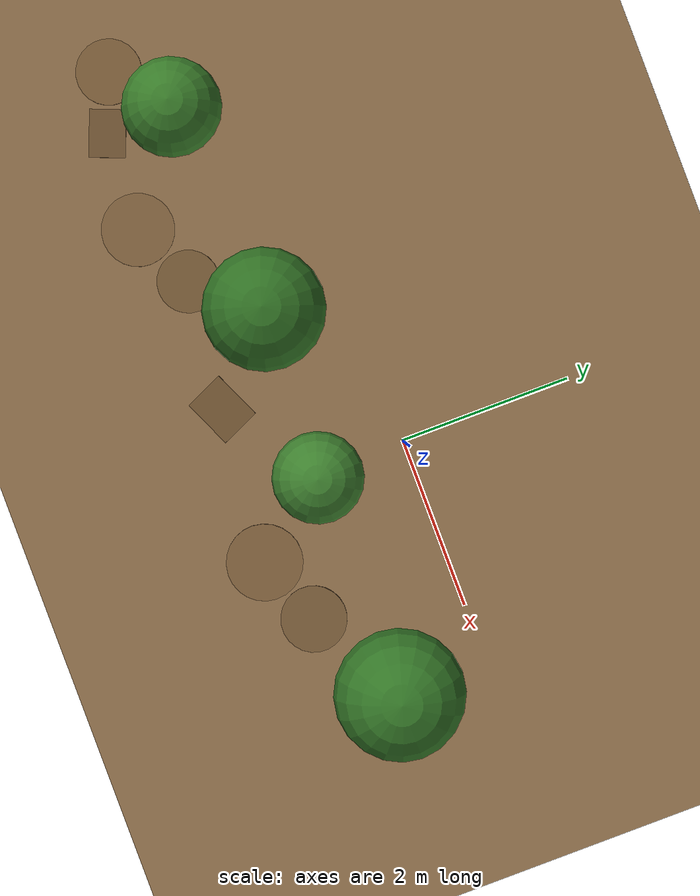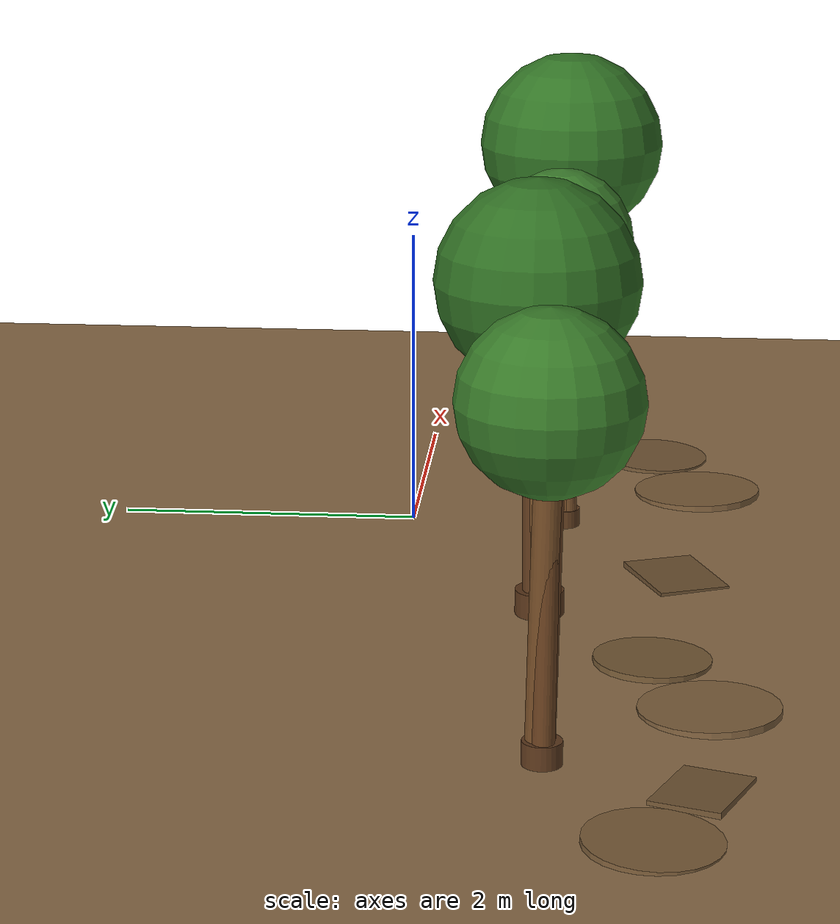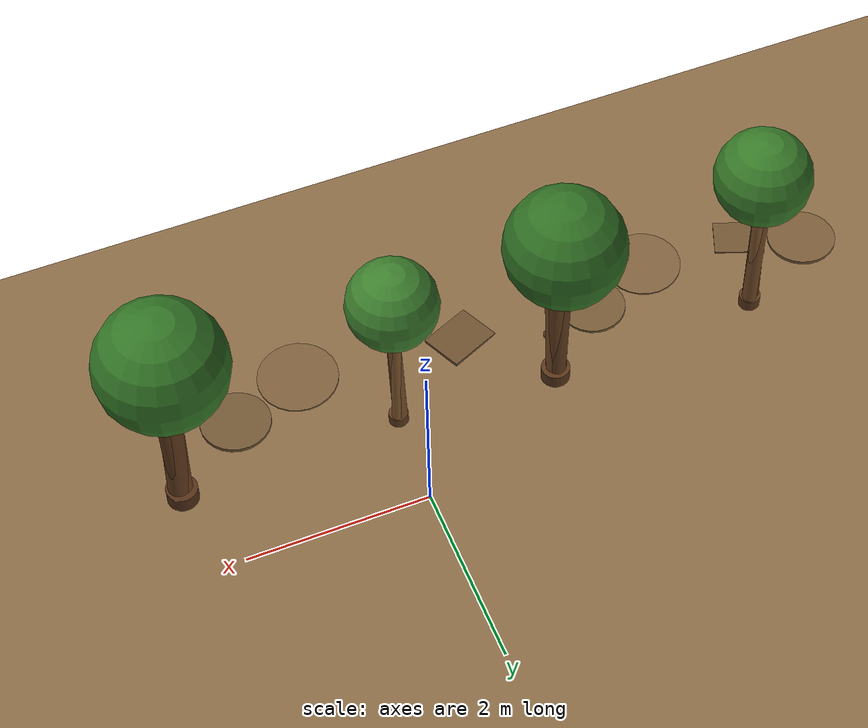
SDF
<?xml version="1.0" ?>
<sdf version="1.6">
  <world name="cultivo_arboles_world">

    <!-- 1. FÍSICA Y PLUGINS DE GAZEBO FORTRESS                             -->
    <physics name="1ms" type="ignored">
      <max_step_size>0.001</max_step_size>
      <real_time_factor>1.0</real_time_factor>
    </physics>
    <plugin filename="libignition-gazebo-physics-system.so" name="ignition::gazebo::systems::Physics"/>
    <plugin filename="libignition-gazebo-user-commands-system.so" name="ignition::gazebo::systems::UserCommands"/>
    <plugin filename="libignition-gazebo-scene-broadcaster-system.so" name="ignition::gazebo::systems::SceneBroadcaster"/>
    <plugin filename="libignition-gazebo-sensors-system.so" name="ignition::gazebo::systems::Sensors">
      <render_engine>ogre2</render_engine>
    </plugin>

    <!-- 2. ILUMINACIÓN SOLAR AGRÍCOLA                                      -->
    <light type="directional" name="sun">
      <cast_shadows>true</cast_shadows>
      <pose>0 0 12 0 0 0</pose>
      <diffuse>0.90 0.88 0.82 1</diffuse>
      <specular>0.25 0.25 0.20 1</specular>
      <attenuation>
        <range>1000</range>
        <constant>0.9</constant>
        <linear>0.01</linear>
        <quadratic>0.001</quadratic>
      </attenuation>
      <direction>-0.45 0.20 -0.87</direction>
    </light>

    <!-- 3. SUELO BASE DE TIERRA AGRÍCOLA + FRANJA DE VEGETACIÓN            -->
    <model name="ground_plane">
      <static>true</static>
      <link name="link">
        <collision name="collision">
          <geometry>
            <plane>
              <normal>0 0 1</normal>
              <size>100 100</size>
            </plane>
          </geometry>
          <surface>
            <friction>
              <ode>
                <mu>0.85</mu>
                <mu2>0.85</mu2>
              </ode>
            </friction>
          </surface>
        </collision>
        <visual name="suelo_tierra_visual">
          <geometry>
            <plane>
              <normal>0 0 1</normal>
              <size>100 100</size>
            </plane>
          </geometry>
          <material>
            <ambient>0.46 0.36 0.24 1</ambient>
            <diffuse>0.54 0.42 0.28 1</diffuse>
            <specular>0.08 0.08 0.06 1</specular>
          </material>
        </visual>
        <!-- Franja visual de pasto/maleza a lo largo de la hilera de árboles -->
        <visual name="franja_hilera_pasto">
          <pose>-1.0 -1.0 0.002 0 0 0</pose>
          <geometry>
            <box>
              <size>14.0 0.85 0.004</size>
            </box>
          </geometry>
          <material>
            <ambient>0.25 0.38 0.16 1</ambient>
            <diffuse>0.30 0.45 0.19 1</diffuse>
            <specular>0.05 0.05 0.05 1</specular>
          </material>
        </visual>
      </link>
    </model>

    <!-- 4. TERRENO IRREGULAR EN EL PASILLO DE NAVEGACIÓN                   -->
    <!-- Lomadas suaves, camellones diagonales y desniveles asimétricos     -->
    <!-- (alturas de 1.4 cm a 2.5 cm) bajo las huellas izquierda y derecha  -->
    <!-- del robot (y ~ -2.15 m a -1.50 m).                                 -->
    <!-- Perturban el yaw, roll y pitch del robot sin bloquear las ruedas   -->
    <!-- ni interferir con el plano horizontal del LiDAR (z ~ 0.33 m).      -->
    <model name="terreno_irregular">
      <static>true</static>
      <link name="link">

        <!-- Lomada 1 (x = -5.1 m, huella izquierda): desvía el robot hacia la derecha al arrancar -->
        <collision name="loma_1_col">
          <pose>-5.10 -1.66 -0.020 0.03 -0.02 0.32</pose>
          <geometry>
            <cylinder>
              <radius>0.38</radius>
              <length>0.072</length>
            </cylinder>
          </geometry>
        </collision>
        <visual name="loma_1_vis">
          <pose>-5.10 -1.66 -0.020 0.03 -0.02 0.32</pose>
          <geometry>
            <cylinder>
              <radius>0.38</radius>
              <length>0.072</length>
            </cylinder>
          </geometry>
          <material>
            <ambient>0.40 0.30 0.19 1</ambient>
            <diffuse>0.48 0.36 0.22 1</diffuse>
          </material>
        </visual>

        <!-- Camellón diagonal 2 (x = -4.45 m, cruza en ángulo): induce alabeo y guiñada a la izquierda -->
        <collision name="camellon_2_col">
          <pose>-4.45 -1.92 -0.012 -0.025 0.02 -0.38</pose>
          <geometry>
            <box>
              <size>0.55 0.42 0.056</size>
            </box>
          </geometry>
        </collision>
        <visual name="camellon_2_vis">
          <pose>-4.45 -1.92 -0.012 -0.025 0.02 -0.38</pose>
          <geometry>
            <box>
              <size>0.55 0.42 0.056</size>
            </box>
          </geometry>
          <material>
            <ambient>0.36 0.27 0.17 1</ambient>
            <diffuse>0.44 0.33 0.20 1</diffuse>
          </material>
        </visual>

        <!-- Montículo 3 (x = -3.30 m, claro entre árbol 1 y 2, huella derecha): empuja hacia los árboles -->
        <collision name="loma_3_col">
          <pose>-3.30 -1.98 -0.018 -0.03 0.015 -0.25</pose>
          <geometry>
            <cylinder>
              <radius>0.42</radius>
              <length>0.076</length>
            </cylinder>
          </geometry>
        </collision>
        <visual name="loma_3_vis">
          <pose>-3.30 -1.98 -0.018 -0.03 0.015 -0.25</pose>
          <geometry>
            <cylinder>
              <radius>0.42</radius>
              <length>0.076</length>
            </cylinder>
          </geometry>
          <material>
            <ambient>0.42 0.32 0.20 1</ambient>
            <diffuse>0.50 0.38 0.24 1</diffuse>
          </material>
        </visual>

        <!-- Surco/bache elevado 4 (x = -2.55 m, huella izquierda): desvía a la derecha antes del árbol 2 -->
        <collision name="loma_4_col">
          <pose>-2.55 -1.65 -0.019 0.028 0.02 0.28</pose>
          <geometry>
            <cylinder>
              <radius>0.36</radius>
              <length>0.074</length>
            </cylinder>
          </geometry>
        </collision>
        <visual name="loma_4_vis">
          <pose>-2.55 -1.65 -0.019 0.028 0.02 0.28</pose>
          <geometry>
            <cylinder>
              <radius>0.36</radius>
              <length>0.074</length>
            </cylinder>
          </geometry>
          <material>
            <ambient>0.38 0.29 0.18 1</ambient>
            <diffuse>0.46 0.35 0.21 1</diffuse>
          </material>
        </visual>

        <!-- Camellón diagonal 5 (x = -1.05 m, entre árbol 2 y 3): desnivel cruzado -->
        <collision name="camellon_5_col">
          <pose>-1.05 -1.80 -0.013 0.02 -0.025 0.42</pose>
          <geometry>
            <box>
              <size>0.60 0.48 0.058</size>
            </box>
          </geometry>
        </collision>
        <visual name="camellon_5_vis">
          <pose>-1.05 -1.80 -0.013 0.02 -0.025 0.42</pose>
          <geometry>
            <box>
              <size>0.60 0.48 0.058</size>
            </box>
          </geometry>
          <material>
            <ambient>0.35 0.26 0.16 1</ambient>
            <diffuse>0.43 0.32 0.19 1</diffuse>
          </material>
        </visual>

        <!-- Lomada 6 (x = +0.75 m, claro entre árbol 3 y 4, huella derecha): desvía hacia la izquierda -->
        <collision name="loma_6_col">
          <pose>0.75 -1.96 -0.018 -0.028 0.018 -0.30</pose>
          <geometry>
            <cylinder>
              <radius>0.44</radius>
              <length>0.076</length>
            </cylinder>
          </geometry>
        </collision>
        <visual name="loma_6_vis">
          <pose>0.75 -1.96 -0.018 -0.028 0.018 -0.30</pose>
          <geometry>
            <cylinder>
              <radius>0.44</radius>
              <length>0.076</length>
            </cylinder>
          </geometry>
          <material>
            <ambient>0.41 0.31 0.19 1</ambient>
            <diffuse>0.49 0.37 0.23 1</diffuse>
          </material>
        </visual>

        <!-- Lomada 7 (x = +1.55 m, huella izquierda antes del árbol 4): empuja hacia la derecha -->
        <collision name="loma_7_col">
          <pose>1.55 -1.66 -0.019 0.025 -0.02 0.35</pose>
          <geometry>
            <cylinder>
              <radius>0.38</radius>
              <length>0.074</length>
            </cylinder>
          </geometry>
        </collision>
        <visual name="loma_7_vis">
          <pose>1.55 -1.66 -0.019 0.025 -0.02 0.35</pose>
          <geometry>
            <cylinder>
              <radius>0.38</radius>
              <length>0.074</length>
            </cylinder>
          </geometry>
          <material>
            <ambient>0.37 0.28 0.17 1</ambient>
            <diffuse>0.45 0.34 0.21 1</diffuse>
          </material>
        </visual>

      </link>
    </model>

    <!-- 5. HILERA DE ÁRBOLES REALISTAS CON SEPARACIONES, RADIOS Y          -->
    <!--    GEOMETRÍA CILÍNDRICA IRREGULAR (LÓBULOS DE CORTEZA + NUDOS)     -->
    <!-- Resumen de la hilera:                                              -->
    <!-- - arbol_1: x = -4.15 m, y = -1.05 m | Radio ~ 0.085 m (delgado)    -->
    <!-- - arbol_2: x = -1.80 m, y = -0.94 m | Radio ~ 0.120 m (sep 2.35 m) -->
    <!-- - arbol_3: x = -0.05 m, y = -1.04 m | Radio ~ 0.076 m (sep 1.75 m) -->
    <!-- - arbol_4: x = +2.35 m, y = -0.96 m | Radio ~ 0.130 m (sep 2.40 m) -->

    <!-- ÁRBOL 1: Joven, corteza acanalada (x = -4.15 m, y = -1.05 m)       -->
    <!-- Radio efectivo ~ 0.085 m, levemente inclinado                      -->
    <model name="arbol_1">
      <static>true</static>
      <pose>-4.15 -1.05 0.0 0 0 0</pose>
      <link name="link">
        <!-- Núcleo del tronco con leve inclinación natural -->
        <collision name="tronco_central_col">
          <pose>0 0 0.95 0.022 -0.018 0</pose>
          <geometry>
            <cylinder>
              <radius>0.080</radius>
              <length>1.90</length>
            </cylinder>
          </geometry>
        </collision>
        <visual name="tronco_central_vis">
          <pose>0 0 0.95 0.022 -0.018 0</pose>
          <geometry>
            <cylinder>
              <radius>0.080</radius>
              <length>1.90</length>
            </cylinder>
          </geometry>
          <material>
            <ambient>0.38 0.24 0.12 1</ambient>
            <diffuse>0.46 0.30 0.15 1</diffuse>
          </material>
        </visual>

        <!-- Lóbulos/nervaduras verticales de corteza (afectan visual y rayos LiDAR) -->
        <collision name="corteza_sur_col">
          <pose>0.012 -0.024 0.85 0.02 -0.01 0</pose>
          <geometry>
            <cylinder>
              <radius>0.064</radius>
              <length>1.70</length>
            </cylinder>
          </geometry>
        </collision>
        <visual name="corteza_sur_vis">
          <pose>0.012 -0.024 0.85 0.02 -0.01 0</pose>
          <geometry>
            <cylinder>
              <radius>0.064</radius>
              <length>1.70</length>
            </cylinder>
          </geometry>
          <material>
            <ambient>0.30 0.18 0.09 1</ambient>
            <diffuse>0.38 0.23 0.11 1</diffuse>
          </material>
        </visual>

        <collision name="corteza_este_col">
          <pose>0.022 0.010 0.80 -0.015 0.02 0</pose>
          <geometry>
            <cylinder>
              <radius>0.062</radius>
              <length>1.60</length>
            </cylinder>
          </geometry>
        </collision>
        <visual name="corteza_este_vis">
          <pose>0.022 0.010 0.80 -0.015 0.02 0</pose>
          <geometry>
            <cylinder>
              <radius>0.062</radius>
              <length>1.60</length>
            </cylinder>
          </geometry>
          <material>
            <ambient>0.44 0.29 0.15 1</ambient>
            <diffuse>0.52 0.35 0.18 1</diffuse>
          </material>
        </visual>

        <collision name="corteza_oeste_col">
          <pose>-0.020 -0.014 0.90 0.01 0.02 0</pose>
          <geometry>
            <cylinder>
              <radius>0.065</radius>
              <length>1.80</length>
            </cylinder>
          </geometry>
        </collision>
        <visual name="corteza_oeste_vis">
          <pose>-0.020 -0.014 0.90 0.01 0.02 0</pose>
          <geometry>
            <cylinder>
              <radius>0.065</radius>
              <length>1.80</length>
            </cylinder>
          </geometry>
          <material>
            <ambient>0.33 0.20 0.10 1</ambient>
            <diffuse>0.41 0.25 0.12 1</diffuse>
          </material>
        </visual>

        <!-- Raíces en la base y copa de follaje -->
        <visual name="raices_base_vis">
          <pose>0 0 0.07 0 0 0</pose>
          <geometry>
            <cylinder>
              <radius>0.115</radius>
              <length>0.14</length>
            </cylinder>
          </geometry>
          <material>
            <ambient>0.30 0.18 0.09 1</ambient>
            <diffuse>0.36 0.22 0.11 1</diffuse>
          </material>
        </visual>
        <visual name="copa_follaje_vis">
          <pose>0.03 -0.02 2.05 0 0 0</pose>
          <geometry>
            <sphere>
              <radius>0.52</radius>
            </sphere>
          </geometry>
          <material>
            <ambient>0.16 0.38 0.12 1</ambient>
            <diffuse>0.22 0.48 0.16 1</diffuse>
          </material>
        </visual>
      </link>
    </model>

    <!-- ÁRBOL 2: Maduro y grueso (x = -1.80 m, y = -0.94 m, sep = 2.35 m)  -->
    <!-- Radio efectivo ~ 0.120 m, más alejado del pasillo                  -->
    <model name="arbol_2">
      <static>true</static>
      <pose>-1.80 -0.94 0.0 0 0 0</pose>
      <link name="link">
        <collision name="tronco_central_col">
          <pose>0 0 1.00 -0.028 0.020 0</pose>
          <geometry>
            <cylinder>
              <radius>0.112</radius>
              <length>2.00</length>
            </cylinder>
          </geometry>
        </collision>
        <visual name="tronco_central_vis">
          <pose>0 0 1.00 -0.028 0.020 0</pose>
          <geometry>
            <cylinder>
              <radius>0.112</radius>
              <length>2.00</length>
            </cylinder>
          </geometry>
          <material>
            <ambient>0.34 0.21 0.11 1</ambient>
            <diffuse>0.42 0.26 0.13 1</diffuse>
          </material>
        </visual>

        <!-- Lóbulos asimétricos de corteza gruesa -->
        <collision name="corteza_sur_col">
          <pose>-0.018 -0.032 0.90 -0.02 0.015 0</pose>
          <geometry>
            <cylinder>
              <radius>0.090</radius>
              <length>1.80</length>
            </cylinder>
          </geometry>
        </collision>
        <visual name="corteza_sur_vis">
          <pose>-0.018 -0.032 0.90 -0.02 0.015 0</pose>
          <geometry>
            <cylinder>
              <radius>0.090</radius>
              <length>1.80</length>
            </cylinder>
          </geometry>
          <material>
            <ambient>0.27 0.16 0.08 1</ambient>
            <diffuse>0.34 0.21 0.10 1</diffuse>
          </material>
        </visual>

        <collision name="corteza_sureste_col">
          <pose>0.030 -0.020 0.85 0.015 0.025 0</pose>
          <geometry>
            <cylinder>
              <radius>0.088</radius>
              <length>1.70</length>
            </cylinder>
          </geometry>
        </collision>
        <visual name="corteza_sureste_vis">
          <pose>0.030 -0.020 0.85 0.015 0.025 0</pose>
          <geometry>
            <cylinder>
              <radius>0.088</radius>
              <length>1.70</length>
            </cylinder>
          </geometry>
          <material>
            <ambient>0.41 0.26 0.13 1</ambient>
            <diffuse>0.49 0.31 0.16 1</diffuse>
          </material>
        </visual>

        <collision name="corteza_noroeste_col">
          <pose>-0.028 0.022 0.95 -0.01 -0.02 0</pose>
          <geometry>
            <cylinder>
              <radius>0.092</radius>
              <length>1.90</length>
            </cylinder>
          </geometry>
        </collision>
        <visual name="corteza_noroeste_vis">
          <pose>-0.028 0.022 0.95 -0.01 -0.02 0</pose>
          <geometry>
            <cylinder>
              <radius>0.092</radius>
              <length>1.90</length>
            </cylinder>
          </geometry>
          <material>
            <ambient>0.31 0.19 0.09 1</ambient>
            <diffuse>0.39 0.24 0.12 1</diffuse>
          </material>
        </visual>

        <visual name="nudo_tronco_vis">
          <pose>0.06 -0.08 0.65 0.3 0.2 0</pose>
          <geometry>
            <sphere>
              <radius>0.055</radius>
            </sphere>
          </geometry>
          <material>
            <ambient>0.25 0.15 0.07 1</ambient>
            <diffuse>0.32 0.19 0.09 1</diffuse>
          </material>
        </visual>
        <visual name="raices_base_vis">
          <pose>0 0 0.08 0 0 0</pose>
          <geometry>
            <cylinder>
              <radius>0.155</radius>
              <length>0.16</length>
            </cylinder>
          </geometry>
          <material>
            <ambient>0.28 0.17 0.08 1</ambient>
            <diffuse>0.35 0.21 0.10 1</diffuse>
          </material>
        </visual>
        <visual name="copa_follaje_vis">
          <pose>-0.04 0.03 2.15 0 0 0</pose>
          <geometry>
            <sphere>
              <radius>0.64</radius>
            </sphere>
          </geometry>
          <material>
            <ambient>0.14 0.34 0.10 1</ambient>
            <diffuse>0.19 0.44 0.14 1</diffuse>
          </material>
        </visual>
      </link>
    </model>

    <!-- ÁRBOL 3: Esbelto y nudoso (x = -0.05 m, y = -1.04 m, sep = 1.75 m) -->
    <!-- Radio efectivo ~ 0.076 m, más cercano al pasillo                   -->
    <model name="arbol_3">
      <static>true</static>
      <pose>-0.05 -1.04 0.0 0 0 0</pose>
      <link name="link">
        <collision name="tronco_central_col">
          <pose>0 0 0.95 0.018 0.026 0</pose>
          <geometry>
            <cylinder>
              <radius>0.070</radius>
              <length>1.90</length>
            </cylinder>
          </geometry>
        </collision>
        <visual name="tronco_central_vis">
          <pose>0 0 0.95 0.018 0.026 0</pose>
          <geometry>
            <cylinder>
              <radius>0.070</radius>
              <length>1.90</length>
            </cylinder>
          </geometry>
          <material>
            <ambient>0.42 0.27 0.14 1</ambient>
            <diffuse>0.50 0.33 0.17 1</diffuse>
          </material>
        </visual>

        <!-- Costillas de corteza irregulares -->
        <collision name="corteza_sur_col">
          <pose>0.014 -0.020 0.85 0.015 0.02 0</pose>
          <geometry>
            <cylinder>
              <radius>0.058</radius>
              <length>1.70</length>
            </cylinder>
          </geometry>
        </collision>
        <visual name="corteza_sur_vis">
          <pose>0.014 -0.020 0.85 0.015 0.02 0</pose>
          <geometry>
            <cylinder>
              <radius>0.058</radius>
              <length>1.70</length>
            </cylinder>
          </geometry>
          <material>
            <ambient>0.33 0.21 0.10 1</ambient>
            <diffuse>0.41 0.26 0.13 1</diffuse>
          </material>
        </visual>

        <collision name="corteza_suroeste_col">
          <pose>-0.018 -0.016 0.80 -0.02 0.015 0</pose>
          <geometry>
            <cylinder>
              <radius>0.056</radius>
              <length>1.60</length>
            </cylinder>
          </geometry>
        </collision>
        <visual name="corteza_suroeste_vis">
          <pose>-0.018 -0.016 0.80 -0.02 0.015 0</pose>
          <geometry>
            <cylinder>
              <radius>0.056</radius>
              <length>1.60</length>
            </cylinder>
          </geometry>
          <material>
            <ambient>0.36 0.23 0.12 1</ambient>
            <diffuse>0.44 0.29 0.15 1</diffuse>
          </material>
        </visual>

        <collision name="corteza_norte_col">
          <pose>0.008 0.022 0.90 0.01 -0.02 0</pose>
          <geometry>
            <cylinder>
              <radius>0.057</radius>
              <length>1.80</length>
            </cylinder>
          </geometry>
        </collision>
        <visual name="corteza_norte_vis">
          <pose>0.008 0.022 0.90 0.01 -0.02 0</pose>
          <geometry>
            <cylinder>
              <radius>0.057</radius>
              <length>1.80</length>
            </cylinder>
          </geometry>
          <material>
            <ambient>0.45 0.30 0.16 1</ambient>
            <diffuse>0.53 0.36 0.19 1</diffuse>
          </material>
        </visual>

        <visual name="raices_base_vis">
          <pose>0 0 0.06 0 0 0</pose>
          <geometry>
            <cylinder>
              <radius>0.105</radius>
              <length>0.12</length>
            </cylinder>
          </geometry>
          <material>
            <ambient>0.31 0.19 0.09 1</ambient>
            <diffuse>0.38 0.24 0.12 1</diffuse>
          </material>
        </visual>
        <visual name="copa_follaje_vis">
          <pose>0.02 0.04 2.00 0 0 0</pose>
          <geometry>
            <sphere>
              <radius>0.48</radius>
            </sphere>
          </geometry>
          <material>
            <ambient>0.18 0.40 0.13 1</ambient>
            <diffuse>0.24 0.50 0.18 1</diffuse>
          </material>
        </visual>
      </link>
    </model>

    <!-- ÁRBOL 4: Robusto e irregular (x = +2.35 m, y = -0.96 m, sep = 2.40m)-->
    <!-- Radio efectivo ~ 0.130 m                                           -->
    <model name="arbol_4">
      <static>true</static>
      <pose>2.35 -0.96 0.0 0 0 0</pose>
      <link name="link">
        <collision name="tronco_central_col">
          <pose>0 0 1.00 -0.020 -0.024 0</pose>
          <geometry>
            <cylinder>
              <radius>0.120</radius>
              <length>2.00</length>
            </cylinder>
          </geometry>
        </collision>
        <visual name="tronco_central_vis">
          <pose>0 0 1.00 -0.020 -0.024 0</pose>
          <geometry>
            <cylinder>
              <radius>0.120</radius>
              <length>2.00</length>
            </cylinder>
          </geometry>
          <material>
            <ambient>0.32 0.19 0.09 1</ambient>
            <diffuse>0.40 0.24 0.12 1</diffuse>
          </material>
        </visual>

        <!-- Lóbulos de corteza pronunciados -->
        <collision name="corteza_sur_col">
          <pose>0.020 -0.036 0.90 -0.015 -0.02 0</pose>
          <geometry>
            <cylinder>
              <radius>0.096</radius>
              <length>1.80</length>
            </cylinder>
          </geometry>
        </collision>
        <visual name="corteza_sur_vis">
          <pose>0.020 -0.036 0.90 -0.015 -0.02 0</pose>
          <geometry>
            <cylinder>
              <radius>0.096</radius>
              <length>1.80</length>
            </cylinder>
          </geometry>
          <material>
            <ambient>0.26 0.15 0.07 1</ambient>
            <diffuse>0.33 0.19 0.09 1</diffuse>
          </material>
        </visual>

        <collision name="corteza_suroeste_col">
          <pose>-0.034 -0.022 0.85 0.02 -0.015 0</pose>
          <geometry>
            <cylinder>
              <radius>0.094</radius>
              <length>1.70</length>
            </cylinder>
          </geometry>
        </collision>
        <visual name="corteza_suroeste_vis">
          <pose>-0.034 -0.022 0.85 0.02 -0.015 0</pose>
          <geometry>
            <cylinder>
              <radius>0.094</radius>
              <length>1.70</length>
            </cylinder>
          </geometry>
          <material>
            <ambient>0.38 0.23 0.11 1</ambient>
            <diffuse>0.46 0.28 0.14 1</diffuse>
          </material>
        </visual>

        <collision name="corteza_este_col">
          <pose>0.035 0.018 0.95 -0.02 0.015 0</pose>
          <geometry>
            <cylinder>
              <radius>0.095</radius>
              <length>1.90</length>
            </cylinder>
          </geometry>
        </collision>
        <visual name="corteza_este_vis">
          <pose>0.035 0.018 0.95 -0.02 0.015 0</pose>
          <geometry>
            <cylinder>
              <radius>0.095</radius>
              <length>1.90</length>
            </cylinder>
          </geometry>
          <material>
            <ambient>0.29 0.17 0.08 1</ambient>
            <diffuse>0.37 0.22 0.10 1</diffuse>
          </material>
        </visual>

        <visual name="raices_base_vis">
          <pose>0 0 0.09 0 0 0</pose>
          <geometry>
            <cylinder>
              <radius>0.168</radius>
              <length>0.18</length>
            </cylinder>
          </geometry>
          <material>
            <ambient>0.26 0.15 0.07 1</ambient>
            <diffuse>0.33 0.19 0.09 1</diffuse>
          </material>
        </visual>
        <visual name="copa_follaje_vis">
          <pose>-0.03 -0.03 2.20 0 0 0</pose>
          <geometry>
            <sphere>
              <radius>0.68</radius>
            </sphere>
          </geometry>
          <material>
            <ambient>0.15 0.36 0.11 1</ambient>
            <diffuse>0.20 0.46 0.15 1</diffuse>
          </material>
        </visual>
      </link>
    </model>

  </world>
</sdf>
